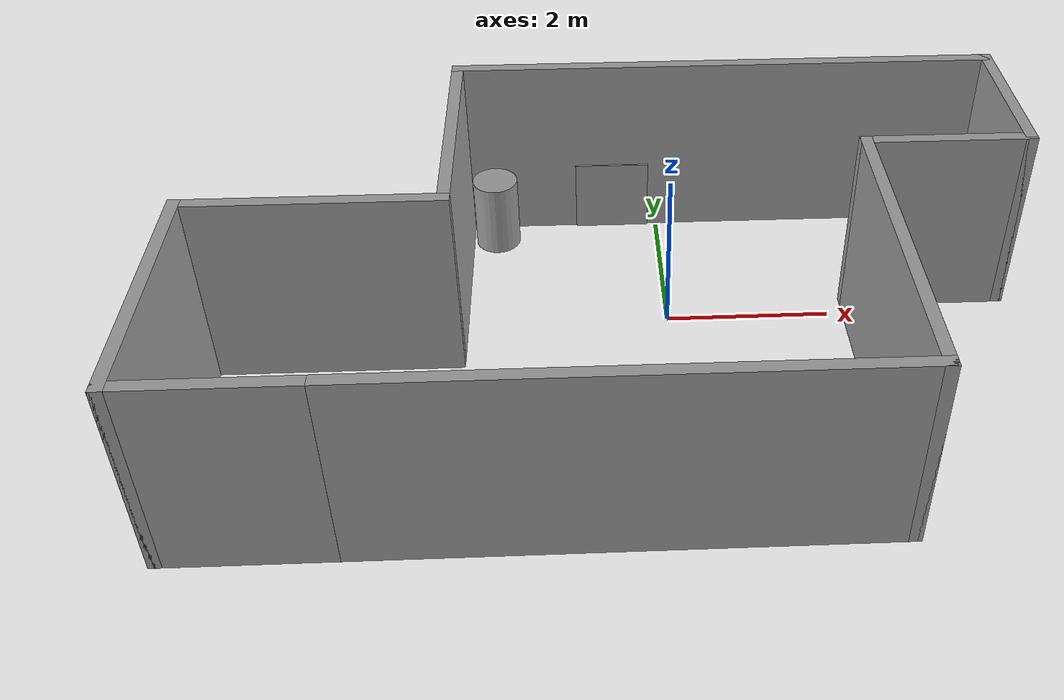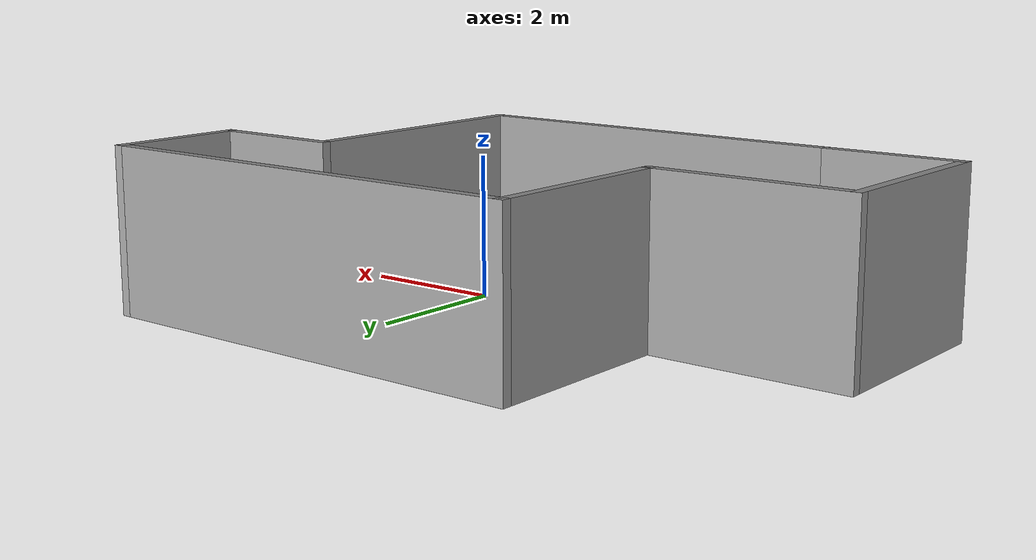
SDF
<?xml version='1.0'?>
<sdf version='1.6'>
  <model name='detailed_room'>
    <link name='link_1'>
      <pose frame=''>2.16564 -2.75019 0.071429 0 -0 0</pose>
      <inertial>
        <mass>1</mass>
        <inertia>
          <ixx>0.166667</ixx>
          <ixy>0</ixy>
          <ixz>0</ixz>
          <iyy>0.166667</iyy>
          <iyz>0</iyz>
          <izz>0.166667</izz>
        </inertia>
        <pose frame=''>0 0 0 0 -0 0</pose>
      </inertial>
      <gravity>1</gravity>
      <self_collide>0</self_collide>
      <kinematic>0</kinematic>
      <visual name='visual'>
        <pose frame=''>0 0 0 0 -0 0</pose>
        <geometry>
          <box>
            <size>0.5 1 1</size>
          </box>
        </geometry>
        <material>
          <lighting>1</lighting>
          <script>
            <uri>file://media/materials/scripts/gazebo.material</uri>
            <name>Gazebo/Grey</name>
          </script>
          <shader type='pixel'>
            <normal_map>__default__</normal_map>
          </shader>
          <ambient>0.3 0.3 0.3 1</ambient>
          <diffuse>0.7 0.7 0.7 1</diffuse>
          <specular>0.01 0.01 0.01 1</specular>
          <emissive>0 0 0 1</emissive>
        </material>
        <transparency>0</transparency>
        <cast_shadows>1</cast_shadows>
      </visual>
      <collision name='collision'>
        <laser_retro>0</laser_retro>
        <max_contacts>10</max_contacts>
        <pose frame=''>0 0 0 0 -0 0</pose>
        <geometry>
          <box>
            <size>0.5 1 1</size>
          </box>
        </geometry>
        <surface>
          <friction>
            <ode>
              <mu>1</mu>
              <mu2>1</mu2>
              <fdir1>0 0 0</fdir1>
              <slip1>0</slip1>
              <slip2>0</slip2>
            </ode>
            <torsional>
              <coefficient>1</coefficient>
              <patch_radius>0</patch_radius>
              <surface_radius>0</surface_radius>
              <use_patch_radius>1</use_patch_radius>
              <ode>
                <slip>0</slip>
              </ode>
            </torsional>
          </friction>
          <bounce>
            <restitution_coefficient>0</restitution_coefficient>
            <threshold>1e+06</threshold>
          </bounce>
          <contact>
            <collide_without_contact>0</collide_without_contact>
            <collide_without_contact_bitmask>1</collide_without_contact_bitmask>
            <collide_bitmask>1</collide_bitmask>
            <ode>
              <soft_cfm>0</soft_cfm>
              <soft_erp>0.2</soft_erp>
              <kp>1e+13</kp>
              <kd>1</kd>
              <max_vel>0.01</max_vel>
              <min_depth>0</min_depth>
            </ode>
            <bullet>
              <split_impulse>1</split_impulse>
              <split_impulse_penetration_threshold>-0.01</split_impulse_penetration_threshold>
              <soft_cfm>0</soft_cfm>
              <soft_erp>0.2</soft_erp>
              <kp>1e+13</kp>
              <kd>1</kd>
            </bullet>
          </contact>
        </surface>
      </collision>
    </link>
    <link name='link_2'>
      <pose frame=''>2.16564 -1.75019 0.071429 0 -0 0</pose>
      <inertial>
        <mass>1</mass>
        <inertia>
          <ixx>0.145833</ixx>
          <ixy>0</ixy>
          <ixz>0</ixz>
          <iyy>0.145833</iyy>
          <iyz>0</iyz>
          <izz>0.125</izz>
        </inertia>
        <pose frame=''>0 0 0 0 -0 0</pose>
      </inertial>
      <gravity>1</gravity>
      <self_collide>0</self_collide>
      <kinematic>0</kinematic>
      <visual name='visual'>
        <pose frame=''>0 0 0 0 -0 0</pose>
        <geometry>
          <cylinder>
            <radius>0.25</radius>
            <length>1</length>
          </cylinder>
        </geometry>
        <material>
          <lighting>1</lighting>
          <script>
            <uri>file://media/materials/scripts/gazebo.material</uri>
            <name>Gazebo/Grey</name>
          </script>
          <shader type='pixel'>
            <normal_map>__default__</normal_map>
          </shader>
          <ambient>0.3 0.3 0.3 1</ambient>
          <diffuse>0.7 0.7 0.7 1</diffuse>
          <specular>0.01 0.01 0.01 1</specular>
          <emissive>0 0 0 1</emissive>
        </material>
        <transparency>0</transparency>
        <cast_shadows>1</cast_shadows>
      </visual>
      <collision name='collision'>
        <laser_retro>0</laser_retro>
        <max_contacts>10</max_contacts>
        <pose frame=''>0 0 0 0 -0 0</pose>
        <geometry>
          <cylinder>
            <radius>0.25</radius>
            <length>1</length>
          </cylinder>
        </geometry>
        <surface>
          <friction>
            <ode>
              <mu>1</mu>
              <mu2>1</mu2>
              <fdir1>0 0 0</fdir1>
              <slip1>0</slip1>
              <slip2>0</slip2>
            </ode>
            <torsional>
              <coefficient>1</coefficient>
              <patch_radius>0</patch_radius>
              <surface_radius>0</surface_radius>
              <use_patch_radius>1</use_patch_radius>
              <ode>
                <slip>0</slip>
              </ode>
            </torsional>
          </friction>
          <bounce>
            <restitution_coefficient>0</restitution_coefficient>
            <threshold>1e+06</threshold>
          </bounce>
          <contact>
            <collide_without_contact>0</collide_without_contact>
            <collide_without_contact_bitmask>1</collide_without_contact_bitmask>
            <collide_bitmask>1</collide_bitmask>
            <ode>
              <soft_cfm>0</soft_cfm>
              <soft_erp>0.2</soft_erp>
              <kp>1e+13</kp>
              <kd>1</kd>
              <max_vel>0.01</max_vel>
              <min_depth>0</min_depth>
            </ode>
            <bullet>
              <split_impulse>1</split_impulse>
              <split_impulse_penetration_threshold>-0.01</split_impulse_penetration_threshold>
              <soft_cfm>0</soft_cfm>
              <soft_erp>0.2</soft_erp>
              <kp>1e+13</kp>
              <kd>1</kd>
            </bullet>
          </contact>
        </surface>
      </collision>
    </link>
    <link name='link_3'>
      <pose frame=''>4.11564 2.44981 0.071429 0 -0 0</pose>
      <inertial>
        <mass>1</mass>
        <inertia>
          <ixx>0.145833</ixx>
          <ixy>0</ixy>
          <ixz>0</ixz>
          <iyy>0.145833</iyy>
          <iyz>0</iyz>
          <izz>0.125</izz>
        </inertia>
        <pose frame=''>0 0 0 0 -0 0</pose>
      </inertial>
      <gravity>1</gravity>
      <self_collide>0</self_collide>
      <kinematic>0</kinematic>
      <visual name='visual'>
        <pose frame=''>0 0 0 0 -0 0</pose>
        <geometry>
          <cylinder>
            <radius>0.1</radius>
            <length>1</length>
          </cylinder>
        </geometry>
        <material>
          <lighting>1</lighting>
          <script>
            <uri>file://media/materials/scripts/gazebo.material</uri>
            <name>Gazebo/Grey</name>
          </script>
          <shader type='pixel'>
            <normal_map>__default__</normal_map>
          </shader>
          <ambient>0.3 0.3 0.3 1</ambient>
          <diffuse>0.7 0.7 0.7 1</diffuse>
          <specular>0.01 0.01 0.01 1</specular>
          <emissive>0 0 0 1</emissive>
        </material>
        <transparency>0</transparency>
        <cast_shadows>1</cast_shadows>
      </visual>
      <collision name='collision'>
        <laser_retro>0</laser_retro>
        <max_contacts>10</max_contacts>
        <pose frame=''>0 0 0 0 -0 0</pose>
        <geometry>
          <cylinder>
            <radius>0.1</radius>
            <length>1</length>
          </cylinder>
        </geometry>
        <surface>
          <friction>
            <ode>
              <mu>1</mu>
              <mu2>1</mu2>
              <fdir1>0 0 0</fdir1>
              <slip1>0</slip1>
              <slip2>0</slip2>
            </ode>
            <torsional>
              <coefficient>1</coefficient>
              <patch_radius>0</patch_radius>
              <surface_radius>0</surface_radius>
              <use_patch_radius>1</use_patch_radius>
              <ode>
                <slip>0</slip>
              </ode>
            </torsional>
          </friction>
          <bounce>
            <restitution_coefficient>0</restitution_coefficient>
            <threshold>1e+06</threshold>
          </bounce>
          <contact>
            <collide_without_contact>0</collide_without_contact>
            <collide_without_contact_bitmask>1</collide_without_contact_bitmask>
            <collide_bitmask>1</collide_bitmask>
            <ode>
              <soft_cfm>0</soft_cfm>
              <soft_erp>0.2</soft_erp>
              <kp>1e+13</kp>
              <kd>1</kd>
              <max_vel>0.01</max_vel>
              <min_depth>0</min_depth>
            </ode>
            <bullet>
              <split_impulse>1</split_impulse>
              <split_impulse_penetration_threshold>-0.01</split_impulse_penetration_threshold>
              <soft_cfm>0</soft_cfm>
              <soft_erp>0.2</soft_erp>
              <kp>1e+13</kp>
              <kd>1</kd>
            </bullet>
          </contact>
        </surface>
      </collision>
    </link>
    <link name='link_4'>
      <pose frame=''>-2.18436 2.34981 0.071429 0 -0 0</pose>
      <inertial>
        <mass>1</mass>
        <inertia>
          <ixx>0.145833</ixx>
          <ixy>0</ixy>
          <ixz>0</ixz>
          <iyy>0.145833</iyy>
          <iyz>0</iyz>
          <izz>0.125</izz>
        </inertia>
        <pose frame=''>0 0 0 0 -0 0</pose>
      </inertial>
      <gravity>1</gravity>
      <self_collide>0</self_collide>
      <kinematic>0</kinematic>
      <visual name='visual'>
        <pose frame=''>0 0 0 0 -0 0</pose>
        <geometry>
          <cylinder>
            <radius>0.3</radius>
            <length>1</length>
          </cylinder>
        </geometry>
        <material>
          <lighting>1</lighting>
          <script>
            <uri>file://media/materials/scripts/gazebo.material</uri>
            <name>Gazebo/Grey</name>
          </script>
          <shader type='pixel'>
            <normal_map>__default__</normal_map>
          </shader>
          <ambient>0.3 0.3 0.3 1</ambient>
          <diffuse>0.7 0.7 0.7 1</diffuse>
          <specular>0.01 0.01 0.01 1</specular>
          <emissive>0 0 0 1</emissive>
        </material>
        <transparency>0</transparency>
        <cast_shadows>1</cast_shadows>
      </visual>
      <collision name='collision'>
        <laser_retro>0</laser_retro>
        <max_contacts>10</max_contacts>
        <pose frame=''>0 0 0 0 -0 0</pose>
        <geometry>
          <cylinder>
            <radius>0.3</radius>
            <length>1</length>
          </cylinder>
        </geometry>
        <surface>
          <friction>
            <ode>
              <mu>1</mu>
              <mu2>1</mu2>
              <fdir1>0 0 0</fdir1>
              <slip1>0</slip1>
              <slip2>0</slip2>
            </ode>
            <torsional>
              <coefficient>1</coefficient>
              <patch_radius>0</patch_radius>
              <surface_radius>0</surface_radius>
              <use_patch_radius>1</use_patch_radius>
              <ode>
                <slip>0</slip>
              </ode>
            </torsional>
          </friction>
          <bounce>
            <restitution_coefficient>0</restitution_coefficient>
            <threshold>1e+06</threshold>
          </bounce>
          <contact>
            <collide_without_contact>0</collide_without_contact>
            <collide_without_contact_bitmask>1</collide_without_contact_bitmask>
            <collide_bitmask>1</collide_bitmask>
            <ode>
              <soft_cfm>0</soft_cfm>
              <soft_erp>0.2</soft_erp>
              <kp>1e+13</kp>
              <kd>1</kd>
              <max_vel>0.01</max_vel>
              <min_depth>0</min_depth>
            </ode>
            <bullet>
              <split_impulse>1</split_impulse>
              <split_impulse_penetration_threshold>-0.01</split_impulse_penetration_threshold>
              <soft_cfm>0</soft_cfm>
              <soft_erp>0.2</soft_erp>
              <kp>1e+13</kp>
              <kd>1</kd>
            </bullet>
          </contact>
        </surface>
      </collision>
    </link>
    <link name='link_5'>
      <pose frame=''>-5.08436 -2.75019 0.071429 0 -0 0</pose>
      <inertial>
        <mass>1</mass>
        <inertia>
          <ixx>0.166667</ixx>
          <ixy>0</ixy>
          <ixz>0</ixz>
          <iyy>0.166667</iyy>
          <iyz>0</iyz>
          <izz>0.166667</izz>
        </inertia>
        <pose frame=''>0 0 0 0 -0 0</pose>
      </inertial>
      <gravity>1</gravity>
      <self_collide>0</self_collide>
      <kinematic>0</kinematic>
      <visual name='visual'>
        <pose frame=''>0 0 0 0 -0 0</pose>
        <geometry>
          <box>
            <size>1 1 1</size>
          </box>
        </geometry>
        <material>
          <lighting>1</lighting>
          <script>
            <uri>file://media/materials/scripts/gazebo.material</uri>
            <name>Gazebo/Grey</name>
          </script>
          <shader type='pixel'>
            <normal_map>__default__</normal_map>
          </shader>
          <ambient>0.3 0.3 0.3 1</ambient>
          <diffuse>0.7 0.7 0.7 1</diffuse>
          <specular>0.01 0.01 0.01 1</specular>
          <emissive>0 0 0 1</emissive>
        </material>
        <transparency>0</transparency>
        <cast_shadows>1</cast_shadows>
      </visual>
      <collision name='collision'>
        <laser_retro>0</laser_retro>
        <max_contacts>10</max_contacts>
        <pose frame=''>0 0 0 0 -0 0</pose>
        <geometry>
          <box>
            <size>1 1 1</size>
          </box>
        </geometry>
        <surface>
          <friction>
            <ode>
              <mu>1</mu>
              <mu2>1</mu2>
              <fdir1>0 0 0</fdir1>
              <slip1>0</slip1>
              <slip2>0</slip2>
            </ode>
            <torsional>
              <coefficient>1</coefficient>
              <patch_radius>0</patch_radius>
              <surface_radius>0</surface_radius>
              <use_patch_radius>1</use_patch_radius>
              <ode>
                <slip>0</slip>
              </ode>
            </torsional>
          </friction>
          <bounce>
            <restitution_coefficient>0</restitution_coefficient>
            <threshold>1e+06</threshold>
          </bounce>
          <contact>
            <collide_without_contact>0</collide_without_contact>
            <collide_without_contact_bitmask>1</collide_without_contact_bitmask>
            <collide_bitmask>1</collide_bitmask>
            <ode>
              <soft_cfm>0</soft_cfm>
              <soft_erp>0.2</soft_erp>
              <kp>1e+13</kp>
              <kd>1</kd>
              <max_vel>0.01</max_vel>
              <min_depth>0</min_depth>
            </ode>
            <bullet>
              <split_impulse>1</split_impulse>
              <split_impulse_penetration_threshold>-0.01</split_impulse_penetration_threshold>
              <soft_cfm>0</soft_cfm>
              <soft_erp>0.2</soft_erp>
              <kp>1e+13</kp>
              <kd>1</kd>
            </bullet>
          </contact>
        </surface>
      </collision>
    </link>
    <link name='link_6'>
      <pose frame=''>-0.584361 2.69981 0.071429 0 -0 0</pose>
      <inertial>
        <mass>1</mass>
        <inertia>
          <ixx>0.166667</ixx>
          <ixy>0</ixy>
          <ixz>0</ixz>
          <iyy>0.166667</iyy>
          <iyz>0</iyz>
          <izz>0.166667</izz>
        </inertia>
        <pose frame=''>0 0 0 0 -0 0</pose>
      </inertial>
      <gravity>1</gravity>
      <self_collide>0</self_collide>
      <kinematic>0</kinematic>
      <visual name='visual'>
        <pose frame=''>0 0 0 0 -0 0</pose>
        <geometry>
          <box>
            <size>1 0.1 1</size>
          </box>
        </geometry>
        <material>
          <lighting>1</lighting>
          <script>
            <uri>file://media/materials/scripts/gazebo.material</uri>
            <name>Gazebo/Grey</name>
          </script>
          <shader type='pixel'>
            <normal_map>__default__</normal_map>
          </shader>
          <ambient>0.3 0.3 0.3 1</ambient>
          <diffuse>0.7 0.7 0.7 1</diffuse>
          <specular>0.01 0.01 0.01 1</specular>
          <emissive>0 0 0 1</emissive>
        </material>
        <transparency>0</transparency>
        <cast_shadows>1</cast_shadows>
      </visual>
      <collision name='collision'>
        <laser_retro>0</laser_retro>
        <max_contacts>10</max_contacts>
        <pose frame=''>0 0 0 0 -0 0</pose>
        <geometry>
          <box>
            <size>1 0.1 1</size>
          </box>
        </geometry>
        <surface>
          <friction>
            <ode>
              <mu>1</mu>
              <mu2>1</mu2>
              <fdir1>0 0 0</fdir1>
              <slip1>0</slip1>
              <slip2>0</slip2>
            </ode>
            <torsional>
              <coefficient>1</coefficient>
              <patch_radius>0</patch_radius>
              <surface_radius>0</surface_radius>
              <use_patch_radius>1</use_patch_radius>
              <ode>
                <slip>0</slip>
              </ode>
            </torsional>
          </friction>
          <bounce>
            <restitution_coefficient>0</restitution_coefficient>
            <threshold>1e+06</threshold>
          </bounce>
          <contact>
            <collide_without_contact>0</collide_without_contact>
            <collide_without_contact_bitmask>1</collide_without_contact_bitmask>
            <collide_bitmask>1</collide_bitmask>
            <ode>
              <soft_cfm>0</soft_cfm>
              <soft_erp>0.2</soft_erp>
              <kp>1e+13</kp>
              <kd>1</kd>
              <max_vel>0.01</max_vel>
              <min_depth>0</min_depth>
            </ode>
            <bullet>
              <split_impulse>1</split_impulse>
              <split_impulse_penetration_threshold>-0.01</split_impulse_penetration_threshold>
              <soft_cfm>0</soft_cfm>
              <soft_erp>0.2</soft_erp>
              <kp>1e+13</kp>
              <kd>1</kd>
            </bullet>
          </contact>
        </surface>
      </collision>
    </link>
    <model name='simple_walls'>
      <pose frame=''>-0.593835 -0.248848 -0.428571 0 -0 0</pose>
      <link name='Wall_10'>
        <collision name='Wall_10_Collision'>
          <geometry>
            <box>
              <size>3.15 0.15 2.5</size>
            </box>
          </geometry>
          <pose frame=''>0 0 1.25 0 -0 0</pose>
        </collision>
        <visual name='Wall_10_Visual'>
          <pose frame=''>0 0 1.25 0 -0 0</pose>
          <geometry>
            <box>
              <size>3.15 0.15 2.5</size>
            </box>
          </geometry>
          <material>
            <script>
              <uri>file://media/materials/scripts/gazebo.material</uri>
              <name>Gazebo/Grey</name>
            </script>
            <ambient>1 1 1 1</ambient>
          </material>
          <meta>
            <layer>0</layer>
          </meta>
        </visual>
        <pose frame=''>-2.00003 1.5 0 0 0 -1.5708</pose>
      </link>
      <link name='Wall_11'>
        <collision name='Wall_11_Collision'>
          <geometry>
            <box>
              <size>3.15 0.15 2.5</size>
            </box>
          </geometry>
          <pose frame=''>0 0 1.25 0 -0 0</pose>
        </collision>
        <visual name='Wall_11_Visual'>
          <pose frame=''>0 0 1.25 0 -0 0</pose>
          <geometry>
            <box>
              <size>3.15 0.15 2.5</size>
            </box>
          </geometry>
          <material>
            <script>
              <uri>file://media/materials/scripts/gazebo.material</uri>
              <name>Gazebo/Grey</name>
            </script>
            <ambient>1 1 1 1</ambient>
          </material>
          <meta>
            <layer>0</layer>
          </meta>
        </visual>
        <pose frame=''>-3.50003 0 0 0 -0 3.14159</pose>
      </link>
      <link name='Wall_12'>
        <collision name='Wall_12_Collision'>
          <geometry>
            <box>
              <size>3.15 0.15 2.5</size>
            </box>
          </geometry>
          <pose frame=''>0 0 1.25 0 -0 0</pose>
        </collision>
        <visual name='Wall_12_Visual'>
          <pose frame=''>0 0 1.25 0 -0 0</pose>
          <geometry>
            <box>
              <size>3.15 0.15 2.5</size>
            </box>
          </geometry>
          <material>
            <script>
              <uri>file://media/materials/scripts/gazebo.material</uri>
              <name>Gazebo/Grey</name>
            </script>
            <ambient>1 1 1 1</ambient>
          </material>
          <meta>
            <layer>0</layer>
          </meta>
        </visual>
        <pose frame=''>-5.00003 -1.5 0 0 0 -1.5708</pose>
      </link>
      <link name='Wall_13'>
        <collision name='Wall_13_Collision'>
          <geometry>
            <box>
              <size>2.15 0.15 2.5</size>
            </box>
          </geometry>
          <pose frame=''>0 0 1.25 0 -0 0</pose>
        </collision>
        <visual name='Wall_13_Visual'>
          <pose frame=''>0 0 1.25 0 -0 0</pose>
          <geometry>
            <box>
              <size>2.15 0.15 2.5</size>
            </box>
          </geometry>
          <material>
            <script>
              <uri>file://media/materials/scripts/gazebo.material</uri>
              <name>Gazebo/Grey</name>
            </script>
            <ambient>1 1 1 1</ambient>
          </material>
          <meta>
            <layer>0</layer>
          </meta>
        </visual>
        <pose frame=''>-4.00003 -3 0 0 -0 0</pose>
      </link>
      <link name='Wall_2'>
        <collision name='Wall_2_Collision'>
          <geometry>
            <box>
              <size>6.15 0.15 2.5</size>
            </box>
          </geometry>
          <pose frame=''>0 0 1.25 0 -0 0</pose>
        </collision>
        <visual name='Wall_2_Visual'>
          <pose frame=''>0 0 1.25 0 -0 0</pose>
          <geometry>
            <box>
              <size>6.15 0.15 2.5</size>
            </box>
          </geometry>
          <material>
            <script>
              <uri>file://media/materials/scripts/gazebo.material</uri>
              <name>Gazebo/Grey</name>
            </script>
            <ambient>1 1 1 1</ambient>
          </material>
          <meta>
            <layer>0</layer>
          </meta>
        </visual>
        <pose frame=''>-3.3e-05 -3 0 0 -0 0</pose>
      </link>
      <link name='Wall_3'>
        <collision name='Wall_3_Collision'>
          <geometry>
            <box>
              <size>4.15 0.15 2.5</size>
            </box>
          </geometry>
          <pose frame=''>0 0 1.25 0 -0 0</pose>
        </collision>
        <visual name='Wall_3_Visual'>
          <pose frame=''>0 0 1.25 0 -0 0</pose>
          <geometry>
            <box>
              <size>4.15 0.15 2.5</size>
            </box>
          </geometry>
          <material>
            <script>
              <uri>file://media/materials/scripts/gazebo.material</uri>
              <name>Gazebo/Grey</name>
            </script>
            <ambient>1 1 1 1</ambient>
          </material>
          <meta>
            <layer>0</layer>
          </meta>
        </visual>
        <pose frame=''>2.99997 -1 0 0 -0 1.5708</pose>
      </link>
      <link name='Wall_7'>
        <collision name='Wall_7_Collision'>
          <geometry>
            <box>
              <size>2.15013 0.15 2.5</size>
            </box>
          </geometry>
          <pose frame=''>0 0 1.25 0 -0 0</pose>
        </collision>
        <visual name='Wall_7_Visual'>
          <pose frame=''>0 0 1.25 0 -0 0</pose>
          <geometry>
            <box>
              <size>2.15013 0.15 2.5</size>
            </box>
          </geometry>
          <material>
            <script>
              <uri>file://media/materials/scripts/gazebo.material</uri>
              <name>Gazebo/Grey</name>
            </script>
            <ambient>1 1 1 1</ambient>
          </material>
          <meta>
            <layer>0</layer>
          </meta>
        </visual>
        <pose frame=''>3.99997 1 0 0 -0 0</pose>
      </link>
      <link name='Wall_8'>
        <collision name='Wall_8_Collision'>
          <geometry>
            <box>
              <size>2.15 0.15 2.5</size>
            </box>
          </geometry>
          <pose frame=''>0 0 1.25 0 -0 0</pose>
        </collision>
        <visual name='Wall_8_Visual'>
          <pose frame=''>0 0 1.25 0 -0 0</pose>
          <geometry>
            <box>
              <size>2.15 0.15 2.5</size>
            </box>
          </geometry>
          <material>
            <script>
              <uri>file://media/materials/scripts/gazebo.material</uri>
              <name>Gazebo/Grey</name>
            </script>
            <ambient>1 1 1 1</ambient>
          </material>
          <meta>
            <layer>0</layer>
          </meta>
        </visual>
        <pose frame=''>4.99997 2 0 0 -0 1.5708</pose>
      </link>
      <link name='Wall_9'>
        <collision name='Wall_9_Collision'>
          <geometry>
            <box>
              <size>7.15 0.15 2.5</size>
            </box>
          </geometry>
          <pose frame=''>0 0 1.25 0 -0 0</pose>
        </collision>
        <visual name='Wall_9_Visual'>
          <pose frame=''>0 0 1.25 0 -0 0</pose>
          <geometry>
            <box>
              <size>7.15 0.15 2.5</size>
            </box>
          </geometry>
          <material>
            <script>
              <uri>file://media/materials/scripts/gazebo.material</uri>
              <name>Gazebo/Grey</name>
            </script>
            <ambient>1 1 1 1</ambient>
          </material>
          <meta>
            <layer>0</layer>
          </meta>
        </visual>
        <pose frame=''>1.49997 3 0 0 -0 3.14159</pose>
      </link>
      <static>1</static>
    </model>
    <static>0</static>
    <allow_auto_disable>1</allow_auto_disable>
  </model>
</sdf>
